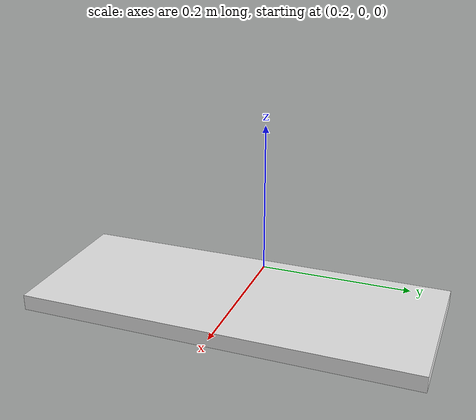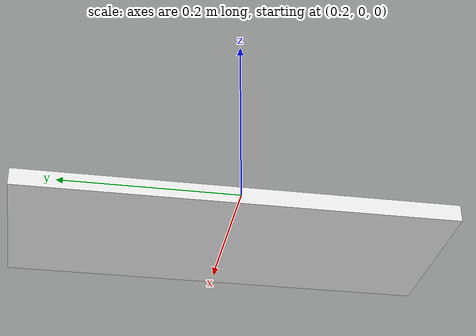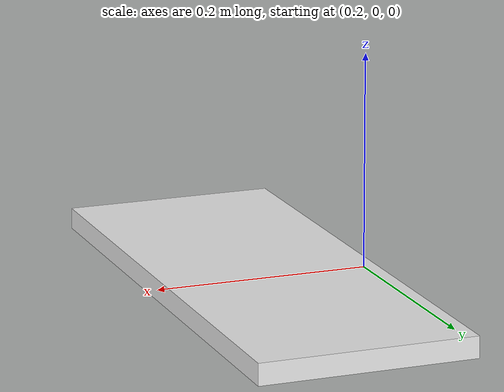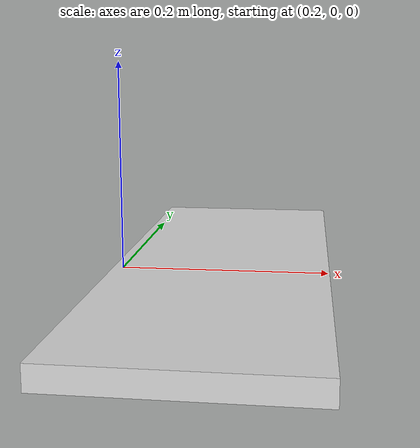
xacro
<?xml version="1.0" ?>

<!-- Generate URDF: -->
<!-- rosrun xacro xacro obstacle_description.xacro > obstacle_description.urdf -->

<robot name="obstacle" xmlns:xacro="http://www.ros.org/wiki/xacro">

    <!-- Obstacle Parameters -->
    <xacro:arg name="l" default="0.2"/>
    <xacro:arg name="w" default="0.5"/>
    <xacro:arg name="h" default="0.02"/>
    <xacro:arg name="d" default="0.3"/>

    <!-- Obstacle Friction -->
    <xacro:property name="kp" value="100000.0" />  <!-- Contact stiffness -->
    <xacro:property name="kd" value="100000.0" />      <!-- Contact damping -->
    <xacro:property name="mu1" value="100000.0" /> <!-- Friction coefficient 1 -->
    <xacro:property name="mu2" value="100000.0" /> <!-- Friction coefficient 2 -->

    <!-- Define world link -->
    <link name="world"/>

    <!-- Make all objects stationary -->
    <gazebo>
        <static>true</static>
    </gazebo>

    <!-- Parameterized Obstacle -->
    <link name="obstacle">
        <inertial>
            <origin xyz="0 0 0" rpy="0 0 0" />
            <mass value="1.0" />
            <inertia  ixx="1.0" ixy="0.0"  ixz="0.0"  iyy="1.0"  iyz="0.0"  izz="1.0" />
        </inertial>

        <visual>
            <origin xyz="$(arg d) 0 0" rpy="0 0 0" />
            <geometry>
                <box size="$(arg l) $(arg w) $(arg h)" />
            </geometry>
        </visual>

        <collision>
            <origin xyz="$(arg d) 0 0" rpy="0 0 0" />
            <geometry>
                <box size="$(arg l) $(arg w) $(arg h)" />
            </geometry>
        </collision>
    </link>

    <!-- Fix the Obstacle to world -->
    <joint name="obstacle_fixed_joint" type="fixed">
        <parent link="world"/>
        <child link="obstacle"/>
    </joint>

    <!-- Gazebo properties -->
    <gazebo reference="obstacle">
        <kp>${kp}</kp>
        <kd>${kd}</kd>
        <mu1>${mu1}</mu1>
        <mu2>${mu2}</mu2>
        <material>Gazebo/White</material>
    </gazebo>

</robot>
